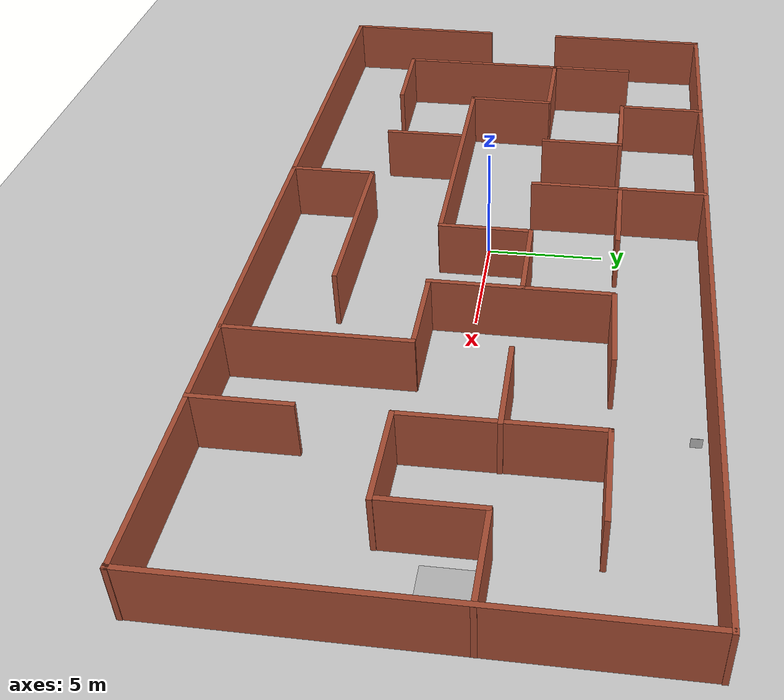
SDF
<sdf version="1.6">
 <world name="default">
  <light name="sun" type="directional">
   <pose>0 0 10 0 -0 0</pose>
   <diffuse>0.8 0.8 0.8 1</diffuse>
   <specular>0.2 0.2 0.2 1</specular>
   <attenuation>
    <range>1000</range>
    <constant>0.9</constant>
    <linear>0.01</linear>
    <quadratic>0.001</quadratic>
   </attenuation>
   <direction>-0.5 0.1 -0.9</direction>
  </light>
  <model name="ceiling">
   <link name="link">
    <inertial>
     <mass>100000</mass>
     <inertia><ixx>100000</ixx><ixy>0</ixy><ixz>0</ixz><iyy>100000</iyy><iyz>0</iyz><izz>100000</izz></inertia>
    </inertial>
    <collision name="collision">
     <geometry><box><size>300 300 0.5</size></box></geometry>
     <friction><ode><mu>1</mu><mu2>1</mu2></ode></friction>
     <contact><ode><kp>1e+07</kp><kd>1</kd><min_depth>0.001</min_depth><max_vel>0.1</max_vel></ode></contact>
    </collision>
   </link>
   <pose>0 0 5 0 0 0</pose>
  </model>
  <model name="ground_plane">
   <static>1</static>
   <link name="link">
    <collision name="collision">
     <geometry><plane><normal>0 0 1</normal><size>300 300</size></plane></geometry>
     <surface><friction><ode><mu>100</mu><mu2>50</mu2></ode></friction></surface>
    </collision>
    <visual name="visual">
     <cast_shadows>0</cast_shadows>
     <geometry><plane><normal>0 0 1</normal><size>300 300</size></plane></geometry>
     <material>
      <script><uri>file://media/materials/scripts/gazebo.material</uri><name>Gazebo/Grey</name></script>
     </material>
    </visual>
   </link>
  </model>
  <gravity>0 0 -9.8</gravity>
  <magnetic_field>6e-06 2.3e-05 -4.2e-05</magnetic_field>
  <atmosphere type="adiabatic"/>
  <physics name="default_physics" default="0" type="ode">
   <max_step_size>0.001</max_step_size>
   <real_time_factor>1</real_time_factor>
   <real_time_update_rate>1000</real_time_update_rate>
  </physics>
  <scene><ambient>0.4 0.4 0.4 1</ambient><background>0.7 0.7 0.7 1</background><shadows>1</shadows></scene>
  <spherical_coordinates>
   <surface_model>EARTH_WGS84</surface_model>
   <latitude_deg>0</latitude_deg>
   <longitude_deg>0</longitude_deg>
   <elevation>0</elevation>
   <heading_deg>0</heading_deg>
  </spherical_coordinates>
  <model name="map2_1">
   <pose>1.79516 0.071786 0 0 -0 0</pose>
   <link name="Wall_0">
    <collision name="Wall_0_Collision">
     <geometry><box><size>7.75 0.2 2.5</size></box></geometry>
     <pose>0 0 1.25 0 -0 0</pose>
    </collision>
    <visual name="Wall_0_Visual">
     <pose>0 0 1.25 0 -0 0</pose>
     <geometry><box><size>7.75 0.2 2.5</size></box></geometry>
     <material>
      <script><uri>file://media/materials/scripts/gazebo.material</uri><name>Gazebo/Bricks</name></script>
      <ambient>1 1 1 1</ambient>
     </material>
     <meta><layer>0</layer></meta>
    </visual>
    <pose>-18.6196 5.51467 0 0 -0 1.5708</pose>
   </link>
   <link name="Wall_1">
    <collision name="Wall_1_Collision">
     <geometry><box><size>37.3896 0.2 2.5</size></box></geometry>
     <pose>0 0 1.25 0 -0 0</pose>
    </collision>
    <visual name="Wall_1_Visual">
     <pose>0 0 1.25 0 -0 0</pose>
     <geometry><box><size>37.3896 0.2 2.5</size></box></geometry>
     <material>
      <script><uri>file://media/materials/scripts/gazebo.material</uri><name>Gazebo/Bricks</name></script>
      <ambient>1 1 1 1</ambient>
     </material>
     <meta><layer>0</layer></meta>
    </visual>
    <pose>0.0002 9.31467 0 0 -0 0</pose>
   </link>
   <link name="Wall_10">
    <collision name="Wall_10_Collision">
     <geometry><box><size>3.93638 0.2 2.5</size></box></geometry>
     <pose>0 0 1.25 0 -0 0</pose>
    </collision>
    <visual name="Wall_10_Visual">
     <pose>0 0 1.25 0 -0 0</pose>
     <geometry><box><size>3.93638 0.2 2.5</size></box></geometry>
     <material>
      <script><uri>file://media/materials/scripts/gazebo.material</uri><name>Gazebo/Bricks</name></script>
      <ambient>1 1 1 1</ambient>
     </material>
     <meta><layer>0</layer></meta>
    </visual>
    <pose>-13.0365 1.84322 0 0 -0 -0.012287</pose>
   </link>
   <link name="Wall_11">
    <collision name="Wall_11_Collision">
     <geometry><box><size>3.84334 0.2 2.5</size></box></geometry>
     <pose>0 0 1.25 0 -0 0</pose>
    </collision>
    <visual name="Wall_11_Visual">
     <pose>0 0 1.25 0 -0 0</pose>
     <geometry><box><size>3.84334 0.2 2.5</size></box></geometry>
     <material>
      <script><uri>file://media/materials/scripts/gazebo.material</uri><name>Gazebo/Bricks</name></script>
      <ambient>1 1 1 1</ambient>
     </material>
     <meta><layer>0</layer></meta>
    </visual>
    <pose>-11.1667 -0.073086 0 0 -0 -1.58339</pose>
   </link>
   <link name="Wall_12">
    <collision name="Wall_12_Collision">
     <geometry><box><size>11.25 0.2 2.5</size></box></geometry>
     <pose>0 0 1.25 0 -0 0</pose>
    </collision>
    <visual name="Wall_12_Visual">
     <pose>0 0 1.25 0 -0 0</pose>
     <geometry><box><size>11.25 0.2 2.5</size></box></geometry>
     <material>
      <script><uri>file://media/materials/scripts/gazebo.material</uri><name>Gazebo/Bricks</name></script>
      <ambient>1 1 1 1</ambient>
     </material>
     <meta><layer>0</layer></meta>
    </visual>
    <pose>-5.63996 -1.96613 0 0 -0 0</pose>
   </link>
   <link name="Wall_14">
    <collision name="Wall_14_Collision">
     <geometry><box><size>4 0.2 2.5</size></box></geometry>
     <pose>0 0 1.25 0 -0 0</pose>
    </collision>
    <visual name="Wall_14_Visual">
     <pose>0 0 1.25 0 -0 0</pose>
     <geometry><box><size>4 0.2 2.5</size></box></geometry>
     <material>
      <script><uri>file://media/materials/scripts/gazebo.material</uri><name>Gazebo/Bricks</name></script>
      <ambient>1 1 1 1</ambient>
     </material>
     <meta><layer>0</layer></meta>
    </visual>
    <pose>-0.08996 -0.041134 0 0 -0 1.5708</pose>
   </link>
   <link name="Wall_15">
    <collision name="Wall_15_Collision">
     <geometry><box><size>4 0.2 2.5</size></box></geometry>
     <pose>0 0 1.25 0 -0 0</pose>
    </collision>
    <visual name="Wall_15_Visual">
     <pose>0 0 1.25 0 -0 0</pose>
     <geometry><box><size>4 0.2 2.5</size></box></geometry>
     <material>
      <script><uri>file://media/materials/scripts/gazebo.material</uri><name>Gazebo/Bricks</name></script>
      <ambient>1 1 1 1</ambient>
     </material>
     <meta><layer>0</layer></meta>
    </visual>
    <pose>1.83504 1.88387 0 0 -0 0</pose>
   </link>
   <link name="Wall_17">
    <collision name="Wall_17_Collision">
     <geometry><box><size>3.75 0.2 2.5</size></box></geometry>
     <pose>0 0 1.25 0 -0 0</pose>
    </collision>
    <visual name="Wall_17_Visual">
     <pose>0 0 1.25 0 -0 0</pose>
     <geometry><box><size>3.75 0.2 2.5</size></box></geometry>
     <material>
      <script><uri>file://media/materials/scripts/gazebo.material</uri><name>Gazebo/Bricks</name></script>
      <ambient>1 1 1 1</ambient>
     </material>
     <meta><layer>0</layer></meta>
    </visual>
    <pose>-7.48571 -3.74848 0 0 -0 -1.5708</pose>
   </link>
   <link name="Wall_19">
    <collision name="Wall_19_Collision">
     <geometry><box><size>3.84422 0.2 2.5</size></box></geometry>
     <pose>0 0 1.25 0 -0 0</pose>
    </collision>
    <visual name="Wall_19_Visual">
     <pose>0 0 1.25 0 -0 0</pose>
     <geometry><box><size>3.84422 0.2 2.5</size></box></geometry>
     <material>
      <script><uri>file://media/materials/scripts/gazebo.material</uri><name>Gazebo/Bricks</name></script>
      <ambient>1 1 1 1</ambient>
     </material>
     <meta><layer>0</layer></meta>
    </visual>
    <pose>5.64847 5.54188 0 0 -0 -3.1164</pose>
   </link>
   <link name="Wall_2">
    <collision name="Wall_2_Collision">
     <geometry><box><size>18.7327 0.2 2.5</size></box></geometry>
     <pose>0 0 1.25 0 -0 0</pose>
    </collision>
    <visual name="Wall_2_Visual">
     <pose>0 0 1.25 0 -0 0</pose>
     <geometry><box><size>18.7327 0.2 2.5</size></box></geometry>
     <material>
      <script><uri>file://media/materials/scripts/gazebo.material</uri><name>Gazebo/Bricks</name></script>
      <ambient>1 1 1 1</ambient>
     </material>
     <meta><layer>0</layer></meta>
    </visual>
    <pose>18.5502 -0.023168 0 0 -0 -1.5733</pose>
   </link>
   <link name="Wall_20">
    <collision name="Wall_20_Collision">
     <geometry><box><size>7.5 0.2 2.5</size></box></geometry>
     <pose>0 0 1.25 0 -0 0</pose>
    </collision>
    <visual name="Wall_20_Visual">
     <pose>0 0 1.25 0 -0 0</pose>
     <geometry><box><size>7.5 0.2 2.5</size></box></geometry>
     <material>
      <script><uri>file://media/materials/scripts/gazebo.material</uri><name>Gazebo/Bricks</name></script>
      <ambient>1 1 1 1</ambient>
     </material>
     <meta><layer>0</layer></meta>
    </visual>
    <pose>3.75542 1.77383 0 0 -0 -1.5708</pose>
   </link>
   <link name="Wall_21">
    <collision name="Wall_21_Collision">
     <geometry><box><size>3.75 0.2 2.5</size></box></geometry>
     <pose>0 0 1.25 0 -0 0</pose>
    </collision>
    <visual name="Wall_21_Visual">
     <pose>0 0 1.25 0 -0 0</pose>
     <geometry><box><size>3.75 0.2 2.5</size></box></geometry>
     <material>
      <script><uri>file://media/materials/scripts/gazebo.material</uri><name>Gazebo/Bricks</name></script>
      <ambient>1 1 1 1</ambient>
     </material>
     <meta><layer>0</layer></meta>
    </visual>
    <pose>5.60195 -1.85465 0 0 -0 0</pose>
   </link>
   <link name="Wall_23">
    <collision name="Wall_23_Collision">
     <geometry><box><size>7.5 0.2 2.5</size></box></geometry>
     <pose>0 0 1.25 0 -0 0</pose>
    </collision>
    <visual name="Wall_23_Visual">
     <pose>0 0 1.25 0 -0 0</pose>
     <geometry><box><size>7.5 0.2 2.5</size></box></geometry>
     <material>
      <script><uri>file://media/materials/scripts/gazebo.material</uri><name>Gazebo/Bricks</name></script>
      <ambient>1 1 1 1</ambient>
     </material>
     <meta><layer>0</layer></meta>
    </visual>
    <pose>7.40195 -5.52965 0 0 -0 -1.5708</pose>
   </link>
   <link name="Wall_25">
    <collision name="Wall_25_Collision">
     <geometry><box><size>3.75 0.2 2.5</size></box></geometry>
     <pose>0 0 1.25 0 -0 0</pose>
    </collision>
    <visual name="Wall_25_Visual">
     <pose>0 0 1.25 0 -0 0</pose>
     <geometry><box><size>3.75 0.2 2.5</size></box></geometry>
     <material>
      <script><uri>file://media/materials/scripts/gazebo.material</uri><name>Gazebo/Bricks</name></script>
      <ambient>1 1 1 1</ambient>
     </material>
     <meta><layer>0</layer></meta>
    </visual>
    <pose>-3.76379 -7.45273 0 0 -0 1.5708</pose>
   </link>
   <link name="Wall_26">
    <collision name="Wall_26_Collision">
     <geometry><box><size>7.75 0.2 2.5</size></box></geometry>
     <pose>0 0 1.25 0 -0 0</pose>
    </collision>
    <visual name="Wall_26_Visual">
     <pose>0 0 1.25 0 -0 0</pose>
     <geometry><box><size>7.75 0.2 2.5</size></box></geometry>
     <material>
      <script><uri>file://media/materials/scripts/gazebo.material</uri><name>Gazebo/Bricks</name></script>
      <ambient>1 1 1 1</ambient>
     </material>
     <meta><layer>0</layer></meta>
    </visual>
    <pose>0.036208 -5.65273 0 0 -0 0</pose>
   </link>
   <link name="Wall_28">
    <collision name="Wall_28_Collision">
     <geometry><box><size>4 0.2 2.5</size></box></geometry>
     <pose>0 0 1.25 0 -0 0</pose>
    </collision>
    <visual name="Wall_28_Visual">
     <pose>0 0 1.25 0 -0 0</pose>
     <geometry><box><size>4 0.2 2.5</size></box></geometry>
     <material>
      <script><uri>file://media/materials/scripts/gazebo.material</uri><name>Gazebo/Bricks</name></script>
      <ambient>1 1 1 1</ambient>
     </material>
     <meta><layer>0</layer></meta>
    </visual>
    <pose>11.1704 -7.37425 0 0 -0 1.5708</pose>
   </link>
   <link name="Wall_30">
    <collision name="Wall_30_Collision">
     <geometry><box><size>4 0.2 2.5</size></box></geometry>
     <pose>0 0 1.25 0 -0 0</pose>
    </collision>
    <visual name="Wall_30_Visual">
     <pose>0 0 1.25 0 -0 0</pose>
     <geometry><box><size>4 0.2 2.5</size></box></geometry>
     <material>
      <script><uri>file://media/materials/scripts/gazebo.material</uri><name>Gazebo/Bricks</name></script>
      <ambient>1 1 1 1</ambient>
     </material>
     <meta><layer>0</layer></meta>
    </visual>
    <pose>9.28042 1.81996 0 0 -0 0</pose>
   </link>
   <link name="Wall_32">
    <collision name="Wall_32_Collision">
     <geometry><box><size>4 0.2 2.5</size></box></geometry>
     <pose>0 0 1.25 0 -0 0</pose>
    </collision>
    <visual name="Wall_32_Visual">
     <pose>0 0 1.25 0 -0 0</pose>
     <geometry><box><size>4 0.2 2.5</size></box></geometry>
     <material>
      <script><uri>file://media/materials/scripts/gazebo.material</uri><name>Gazebo/Bricks</name></script>
      <ambient>1 1 1 1</ambient>
     </material>
     <meta><layer>0</layer></meta>
    </visual>
    <pose>13.0603 5.5884 0 0 -0 3.14159</pose>
   </link>
   <link name="Wall_33">
    <collision name="Wall_33_Collision">
     <geometry><box><size>7.70353 0.2 2.5</size></box></geometry>
     <pose>0 0 1.25 0 -0 0</pose>
    </collision>
    <visual name="Wall_33_Visual">
     <pose>0 0 1.25 0 -0 0</pose>
     <geometry><box><size>7.70353 0.2 2.5</size></box></geometry>
     <material>
      <script><uri>file://media/materials/scripts/gazebo.material</uri><name>Gazebo/Bricks</name></script>
      <ambient>1 1 1 1</ambient>
     </material>
     <meta><layer>0</layer></meta>
    </visual>
    <pose>11.1499 1.81166 0 0 -0 -1.56694</pose>
   </link>
   <link name="Wall_34">
    <collision name="Wall_34_Collision">
     <geometry><box><size>4 0.2 2.5</size></box></geometry>
     <pose>0 0 1.25 0 -0 0</pose>
    </collision>
    <visual name="Wall_34_Visual">
     <pose>0 0 1.25 0 -0 0</pose>
     <geometry><box><size>4 0.2 2.5</size></box></geometry>
     <material>
      <script><uri>file://media/materials/scripts/gazebo.material</uri><name>Gazebo/Bricks</name></script>
      <ambient>1 1 1 1</ambient>
     </material>
     <meta><layer>0</layer></meta>
    </visual>
    <pose>13.0895 -1.96508 0 0 -0 0</pose>
   </link>
   <link name="Wall_35">
    <collision name="Wall_35_Collision">
     <geometry><box><size>4 0.2 2.5</size></box></geometry>
     <pose>0 0 1.25 0 -0 0</pose>
    </collision>
    <visual name="Wall_35_Visual">
     <pose>0 0 1.25 0 -0 0</pose>
     <geometry><box><size>4 0.2 2.5</size></box></geometry>
     <material>
      <script><uri>file://media/materials/scripts/gazebo.material</uri><name>Gazebo/Bricks</name></script>
      <ambient>1 1 1 1</ambient>
     </material>
     <meta><layer>0</layer></meta>
    </visual>
    <pose>14.968 -0.040077 0 0 -0 1.5708</pose>
   </link>
   <link name="Wall_36">
    <collision name="Wall_36_Collision">
     <geometry><box><size>3.72116 0.2 2.5</size></box></geometry>
     <pose>0 0 1.25 0 -0 0</pose>
    </collision>
    <visual name="Wall_36_Visual">
     <pose>0 0 1.25 0 -0 0</pose>
     <geometry><box><size>3.72116 0.2 2.5</size></box></geometry>
     <material>
      <script><uri>file://media/materials/scripts/gazebo.material</uri><name>Gazebo/Bricks</name></script>
      <ambient>1 1 1 1</ambient>
     </material>
     <meta><layer>0</layer></meta>
    </visual>
    <pose>16.7999 1.86166 0 0 -0 -0.013028</pose>
   </link>
   <link name="Wall_38">
    <collision name="Wall_38_Collision">
     <geometry><box><size>4 0.2 2.5</size></box></geometry>
     <pose>0 0 1.25 0 -0 0</pose>
    </collision>
    <visual name="Wall_38_Visual">
     <pose>0 0 1.25 0 -0 0</pose>
     <geometry><box><size>4 0.2 2.5</size></box></geometry>
     <material>
      <script><uri>file://media/materials/scripts/gazebo.material</uri><name>Gazebo/Bricks</name></script>
      <ambient>1 1 1 1</ambient>
     </material>
     <meta><layer>0</layer></meta>
    </visual>
    <pose>-11.1611 7.38531 0 0 -0 -1.5708</pose>
   </link>
   <link name="Wall_39">
    <collision name="Wall_39_Collision">
     <geometry><box><size>3.84305 0.2 2.5</size></box></geometry>
     <pose>0 0 1.25 0 -0 0</pose>
    </collision>
    <visual name="Wall_39_Visual">
     <pose>0 0 1.25 0 -0 0</pose>
     <geometry><box><size>3.84305 0.2 2.5</size></box></geometry>
     <material>
      <script><uri>file://media/materials/scripts/gazebo.material</uri><name>Gazebo/Bricks</name></script>
      <ambient>1 1 1 1</ambient>
     </material>
     <meta><layer>0</layer></meta>
    </visual>
    <pose>-9.31457 5.46031 0 0 -0 0</pose>
   </link>
   <link name="Wall_4">
    <collision name="Wall_4_Collision">
     <geometry><box><size>37.3438 0.2 2.5</size></box></geometry>
     <pose>0 0 1.25 0 -0 0</pose>
    </collision>
    <visual name="Wall_4_Visual">
     <pose>0 0 1.25 0 -0 0</pose>
     <geometry><box><size>37.3438 0.2 2.5</size></box></geometry>
     <material>
      <script><uri>file://media/materials/scripts/gazebo.material</uri><name>Gazebo/Bricks</name></script>
      <ambient>1 1 1 1</ambient>
     </material>
     <meta><layer>0</layer></meta>
    </visual>
    <pose>-0.023062 -9.27664 0 0 -0 -3.14113</pose>
   </link>
   <link name="Wall_40">
    <collision name="Wall_40_Collision">
     <geometry><box><size>3.75 0.2 2.5</size></box></geometry>
     <pose>0 0 1.25 0 -0 0</pose>
    </collision>
    <visual name="Wall_40_Visual">
     <pose>0 0 1.25 0 -0 0</pose>
     <geometry><box><size>3.75 0.2 2.5</size></box></geometry>
     <material>
      <script><uri>file://media/materials/scripts/gazebo.material</uri><name>Gazebo/Bricks</name></script>
      <ambient>1 1 1 1</ambient>
     </material>
     <meta><layer>0</layer></meta>
    </visual>
    <pose>-7.51457 3.66031 0 0 -0 -1.5708</pose>
   </link>
   <link name="Wall_42">
    <collision name="Wall_42_Collision">
     <geometry><box><size>7.75 0.2 2.5</size></box></geometry>
     <pose>0 0 1.25 0 -0 0</pose>
    </collision>
    <visual name="Wall_42_Visual">
     <pose>0 0 1.25 0 -0 0</pose>
     <geometry><box><size>7.75 0.2 2.5</size></box></geometry>
     <material>
      <script><uri>file://media/materials/scripts/gazebo.material</uri><name>Gazebo/Bricks</name></script>
      <ambient>1 1 1 1</ambient>
     </material>
     <meta><layer>0</layer></meta>
    </visual>
    <pose>-3.76379 5.46379 0 0 -0 -1.5708</pose>
   </link>
   <link name="Wall_44">
    <collision name="Wall_44_Collision">
     <geometry><box><size>4 0.2 2.5</size></box></geometry>
     <pose>0 0 1.25 0 -0 0</pose>
    </collision>
    <visual name="Wall_44_Visual">
     <pose>0 0 1.25 0 -0 0</pose>
     <geometry><box><size>4 0.2 2.5</size></box></geometry>
     <material>
      <script><uri>file://media/materials/scripts/gazebo.material</uri><name>Gazebo/Bricks</name></script>
      <ambient>1 1 1 1</ambient>
     </material>
     <meta><layer>0</layer></meta>
    </visual>
    <pose>-1.83879 5.54188 0 0 -0 0</pose>
   </link>
   <link name="Wall_5">
    <collision name="Wall_5_Collision">
     <geometry><box><size>7.5 0.2 2.5</size></box></geometry>
     <pose>0 0 1.25 0 -0 0</pose>
    </collision>
    <visual name="Wall_5_Visual">
     <pose>0 0 1.25 0 -0 0</pose>
     <geometry><box><size>7.5 0.2 2.5</size></box></geometry>
     <material>
      <script><uri>file://media/materials/scripts/gazebo.material</uri><name>Gazebo/Bricks</name></script>
      <ambient>1 1 1 1</ambient>
     </material>
     <meta><layer>0</layer></meta>
    </visual>
    <pose>-18.6196 -5.61033 0 0 -0 1.5708</pose>
   </link>
   <link name="Wall_7">
    <collision name="Wall_7_Collision">
     <geometry><box><size>11.5 0.2 2.5</size></box></geometry>
     <pose>0 0 1.25 0 -0 0</pose>
    </collision>
    <visual name="Wall_7_Visual">
     <pose>0 0 1.25 0 -0 0</pose>
     <geometry><box><size>11.5 0.2 2.5</size></box></geometry>
     <material>
      <script><uri>file://media/materials/scripts/gazebo.material</uri><name>Gazebo/Bricks</name></script>
      <ambient>1 1 1 1</ambient>
     </material>
     <meta><layer>0</layer></meta>
    </visual>
    <pose>-14.9546 -0.004511 0 0 -0 -1.5708</pose>
   </link>
   <link name="Wall_8">
    <collision name="Wall_8_Collision">
     <geometry><box><size>3.9604 0.2 2.5</size></box></geometry>
     <pose>0 0 1.25 0 -0 0</pose>
    </collision>
    <visual name="Wall_8_Visual">
     <pose>0 0 1.25 0 -0 0</pose>
     <geometry><box><size>3.9604 0.2 2.5</size></box></geometry>
     <material>
      <script><uri>file://media/materials/scripts/gazebo.material</uri><name>Gazebo/Bricks</name></script>
      <ambient>1 1 1 1</ambient>
     </material>
     <meta><layer>0</layer></meta>
    </visual>
    <pose>-13.0498 -5.63906 0 0 -0 0.021236</pose>
   </link>
   <static>1</static>
  </model>
  <model name="landing2">
   <static>1</static>
   <link name="link">
    <visual name="visual">
     <geometry><mesh><uri>model://landing2/meshes/landing2.dae</uri><scale>2 4 4</scale></mesh></geometry>
    </visual>
    <collision name="Landing_2_Collision">
     <geometry><mesh><uri>model://landing2/meshes/landing2.dae</uri><scale>2 4 4</scale></mesh></geometry>
    </collision>
    <collision name="Landing_2_Collision">
     <geometry><mesh><uri>model://landing2/meshes/landing2.dae</uri><scale>2 4 4</scale></mesh></geometry>
    </collision>
   </link>
   <pose>18.3012 -0.3 0 0 1.57 1.57</pose>
  </model>
  <model name="takeoff">
   <static>1</static>
   <link name="link">
    <visual name="visual">
     <geometry><mesh><uri>model://takeoff/meshes/takeoff.dae</uri><scale>2 2 2</scale></mesh></geometry>
    </visual>
    <collision name="Takeoff_Collision">
     <geometry><mesh><uri>model://takeoff/meshes/takeoff.dae</uri><scale>2 2 2</scale></mesh></geometry>
    </collision>
   </link>
   <pose>-16 -0.5 0 0 1.57 1.57</pose>
  </model>
  <model name="target_red">
   <static>0</static>
   <link name="link">
    <collision name="Target_Red_Collision">
     <geometry>
      <mesh><uri>model://target_red/meshes/target_red.dae</uri><scale>0.9 0.9 0.9</scale></mesh>
     </geometry>
     <pose>0 0 -0.225 0 0 3.1415</pose>
    </collision>
    <visual name="visual">
     <geometry>
      <mesh><uri>model://target_red/meshes/target_red.dae</uri><scale>0.9 0.9 0.9</scale></mesh>
     </geometry>
     <pose>0 0 -0.225 0 0 3.1415</pose>
    </visual>
    <gravity>0</gravity>
   </link>
   <pose>-8.97289 -3.7558 0 0 -0 0</pose>
  </model>
  <model name="target_blue">
   <static>0</static>
   <link name="link">
    <collision name="Target_Blue_Collision">
     <geometry>
      <mesh><uri>model://target_blue/meshes/target_blue.dae</uri><scale>0.9 0.9 0.9</scale></mesh>
     </geometry>
     <pose>0 0 -0.225 0 0 3.1415</pose>
    </collision>
    <visual name="visual">
     <geometry>
      <mesh><uri>model://target_blue/meshes/target_blue.dae</uri><scale>0.9 0.9 0.9</scale></mesh>
     </geometry>
     <pose>0 0 -0.225 0 0 3.1415</pose>
    </visual>
    <gravity>0</gravity>
   </link>
   <pose>10.9445 8.81946 0.18348 0 -0 0</pose>
  </model>
  <model name="target_green">
   <static>0</static>
   <link name="link">
    <collision name="Target_Green_Collision">
     <geometry>
      <mesh><uri>model://target_green/meshes/target_green.dae</uri><scale>0.9 0.9 0.9</scale></mesh>
     </geometry>
     <pose>0 0 -0.225 0 0 3.1415</pose>
    </collision>
    <visual name="visual">
     <geometry>
      <mesh><uri>model://target_green/meshes/target_green.dae</uri><scale>0.9 0.9 0.9</scale></mesh>
     </geometry>
     <pose>0 0 -0.225 0 0 3.1415</pose>
    </visual>
    <gravity>0</gravity>
   </link>
   <pose>18.5856 -8.05752 0 0 -0 0</pose>
  </model>
 </world>
</sdf>
